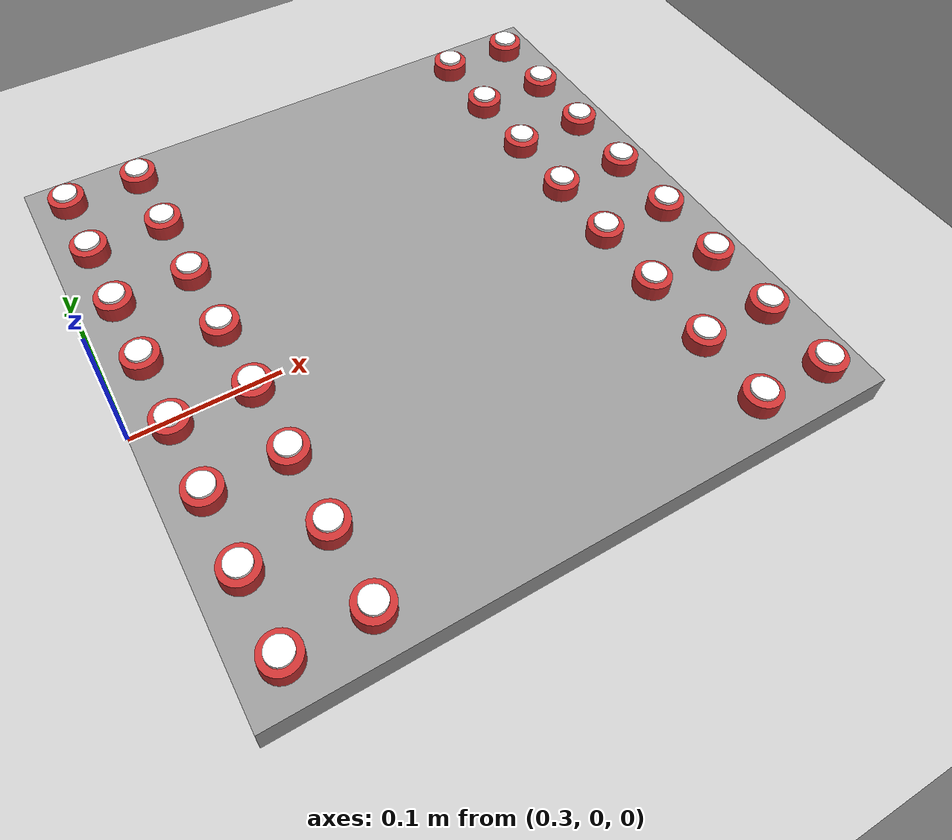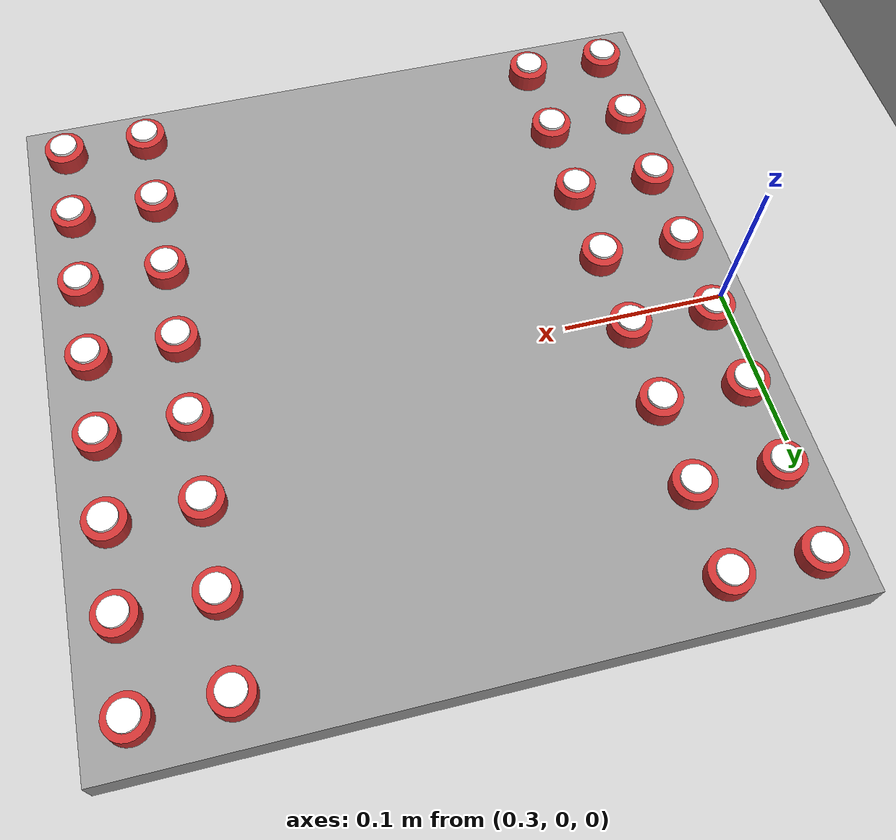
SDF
<?xml version="1.0" ?>
<sdf version="1.6">
  <world name="panda_pick_and_place">
    <!--A global light source-->
    <include>
      <uri>model://sun</uri>
    </include>
    <!--A ground plane-->
    <include>
      <uri>model://ground_plane</uri>
    </include>
    <!--A chess board-->
    <include>
      <uri>model://checkerboard_plane</uri>
      <pose>0.5 0.0 0.011 0 -0 0</pose>
    </include>
    <include>
      <uri>model://chess_box</uri>
      <pose>0.5 0.0 0.0 0 -0 0</pose>
    </include>

    <!-- Chess pieces -->
<include>
    <uri>model://chess_piece</uri>
    <name>chess_piece_0</name>
    <pose>0.325 -0.175 0.021 0 0 0</pose>
</include>

<include>
    <uri>model://chess_piece</uri>
    <name>chess_piece_1</name>
    <pose>0.325 -0.125 0.021 0 0 0</pose>
</include>

<include>
    <uri>model://chess_piece</uri>
    <name>chess_piece_2</name>
    <pose>0.325 -0.075 0.021 0 0 0</pose>
</include>

<include>
    <uri>model://chess_piece</uri>
    <name>chess_piece_3</name>
    <pose>0.325 -0.025 0.021 0 0 0</pose>
</include>

<include>
    <uri>model://chess_piece</uri>
    <name>chess_piece_4</name>
    <pose>0.325 0.025 0.021 0 0 0</pose>
</include>

<include>
    <uri>model://chess_piece</uri>
    <name>chess_piece_5</name>
    <pose>0.325 0.075 0.021 0 0 0</pose>
</include>

<include>
    <uri>model://chess_piece</uri>
    <name>chess_piece_6</name>
    <pose>0.325 0.125 0.021 0 0 0</pose>
</include>

<include>
    <uri>model://chess_piece</uri>
    <name>chess_piece_7</name>
    <pose>0.325 0.175 0.021 0 0 0</pose>
</include>

<include>
    <uri>model://chess_piece</uri>
    <name>chess_piece_8</name>
    <pose>0.375 -0.175 0.021 0 0 0</pose>
</include>

<include>
    <uri>model://chess_piece</uri>
    <name>chess_piece_9</name>
    <pose>0.375 -0.125 0.021 0 0 0</pose>
</include>

<include>
    <uri>model://chess_piece</uri>
    <name>chess_piece_10</name>
    <pose>0.375 -0.075 0.021 0 0 0</pose>
</include>

<include>
    <uri>model://chess_piece</uri>
    <name>chess_piece_11</name>
    <pose>0.375 -0.025 0.021 0 0 0</pose>
</include>

<include>
    <uri>model://chess_piece</uri>
    <name>chess_piece_12</name>
    <pose>0.375 0.025 0.021 0 0 0</pose>
</include>

<include>
    <uri>model://chess_piece</uri>
    <name>chess_piece_13</name>
    <pose>0.375 0.075 0.021 0 0 0</pose>
</include>

<include>
    <uri>model://chess_piece</uri>
    <name>chess_piece_14</name>
    <pose>0.375 0.125 0.021 0 0 0</pose>
</include>

<include>
    <uri>model://chess_piece</uri>
    <name>chess_piece_15</name>
    <pose>0.375 0.175 0.021 0 0 0</pose>
</include>

<include>
    <uri>model://chess_piece</uri>
    <name>chess_piece_48</name>
    <pose>0.625 -0.175 0.021 0 0 0</pose>
</include>

<include>
    <uri>model://chess_piece</uri>
    <name>chess_piece_49</name>
    <pose>0.625 -0.125 0.021 0 0 0</pose>
</include>

<include>
    <uri>model://chess_piece</uri>
    <name>chess_piece_50</name>
    <pose>0.625 -0.075 0.021 0 0 0</pose>
</include>

<include>
    <uri>model://chess_piece</uri>
    <name>chess_piece_51</name>
    <pose>0.625 -0.025 0.021 0 0 0</pose>
</include>

<include>
    <uri>model://chess_piece</uri>
    <name>chess_piece_52</name>
    <pose>0.625 0.025 0.021 0 0 0</pose>
</include>

<include>
    <uri>model://chess_piece</uri>
    <name>chess_piece_53</name>
    <pose>0.625 0.075 0.021 0 0 0</pose>
</include>

<include>
    <uri>model://chess_piece</uri>
    <name>chess_piece_54</name>
    <pose>0.625 0.125 0.021 0 0 0</pose>
</include>

<include>
    <uri>model://chess_piece</uri>
    <name>chess_piece_55</name>
    <pose>0.625 0.175 0.021 0 0 0</pose>
</include>

<include>
    <uri>model://chess_piece</uri>
    <name>chess_piece_56</name>
    <pose>0.675 -0.175 0.021 0 0 0</pose>
</include>

<include>
    <uri>model://chess_piece</uri>
    <name>chess_piece_57</name>
    <pose>0.675 -0.125 0.021 0 0 0</pose>
</include>

<include>
    <uri>model://chess_piece</uri>
    <name>chess_piece_58</name>
    <pose>0.675 -0.075 0.021 0 0 0</pose>
</include>

<include>
    <uri>model://chess_piece</uri>
    <name>chess_piece_59</name>
    <pose>0.675 -0.025 0.021 0 0 0</pose>
</include>

<include>
    <uri>model://chess_piece</uri>
    <name>chess_piece_60</name>
    <pose>0.675 0.025 0.021 0 0 0</pose>
</include>

<include>
    <uri>model://chess_piece</uri>
    <name>chess_piece_61</name>
    <pose>0.675 0.075 0.021 0 0 0</pose>
</include>

<include>
    <uri>model://chess_piece</uri>
    <name>chess_piece_62</name>
    <pose>0.675 0.125 0.021 0 0 0</pose>
</include>

<include>
    <uri>model://chess_piece</uri>
    <name>chess_piece_63</name>
    <pose>0.675 0.175 0.021 0 0 0</pose>
</include>

  </world>
</sdf>

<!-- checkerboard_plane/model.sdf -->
<sdf version="1.5">
  <model name="checkerboard_plane">
    <static>true</static>
    <link name="link">
      <collision name="collision">
        <geometry>
          <plane>
            <normal>0 0 1</normal>
            <size>2000 2000</size>
          </plane>
        </geometry>
        <surface>
          <friction>
            <ode>
              <mu>100</mu>
              <mu2>50</mu2>
            </ode>
          </friction>
        </surface>
      </collision>
      <visual name="visual">
        <cast_shadows>false</cast_shadows>
        <geometry>
          <plane>
            <normal>0 0 1</normal>
            <size>2000 2000</size>
          </plane>
        </geometry>
        <material>
          <script>
            <uri>model://checkerboard_plane/materials/scripts</uri>
            <uri>model://checkerboard_plane/materials/textures</uri>
            <name>Checkerboard/Checkerboard</name>
          </script>
        </material>
      </visual>
    </link>
  </model>
</sdf>

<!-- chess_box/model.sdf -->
<sdf version='1.6'>
  <model name='chess_box'>
    <link name='link'>
      <pose>0 0 0.02 0 -0 0</pose>
      <inertial>
        <pose>0 0 0 0 -0 0</pose>
        <mass>10</mass>
        <inertia>
          <ixx>0.166667</ixx>
          <ixy>0</ixy>
          <ixz>0</ixz>
          <iyy>0.166667</iyy>
          <iyz>0</iyz>
          <izz>0.166667</izz>
        </inertia>
      </inertial>
      <self_collide>0</self_collide>
      <enable_wind>0</enable_wind>
      <kinematic>0</kinematic>
      <visual name='visual'>
        <pose>0 0 0 0 -0 0</pose>
        <geometry>
          <box>
            <size>0.4 0.4 0.02</size>
          </box>
        </geometry>
        <material>
          <script>
            <name>Gazebo/Grey</name>
            <uri>file://media/materials/scripts/gazebo.material</uri>
          </script>
          <shader type='pixel'/>
        </material>
        <pose>0 0 0 0 -0 0</pose>
        <transparency>0</transparency>
        <cast_shadows>1</cast_shadows>
      </visual>
      <collision name='collision'>
        <laser_retro>0</laser_retro>
        <max_contacts>10</max_contacts>
        <pose>0 0 0 0 -0 0</pose>
        <geometry>
          <box>
            <size>0.4 0.4 0.02</size>
          </box>
        </geometry>
        <surface>
          <friction>
            <ode>
              <mu>1</mu>
              <mu2>1</mu2>
              <fdir1>0 0 0</fdir1>
              <slip1>0</slip1>
              <slip2>0</slip2>
            </ode>
            <torsional>
              <coefficient>1</coefficient>
              <patch_radius>0</patch_radius>
              <surface_radius>0</surface_radius>
              <use_patch_radius>1</use_patch_radius>
              <ode>
                <slip>0</slip>
              </ode>
            </torsional>
          </friction>
          <bounce>
            <restitution_coefficient>0</restitution_coefficient>
            <threshold>1e+06</threshold>
          </bounce>
          <contact>
            <collide_without_contact>0</collide_without_contact>
            <collide_without_contact_bitmask>1</collide_without_contact_bitmask>
            <collide_bitmask>1</collide_bitmask>
            <ode>
              <soft_cfm>0</soft_cfm>
              <soft_erp>0.2</soft_erp>
              <kp>1e+13</kp>
              <kd>1</kd>
              <max_vel>0.01</max_vel>
              <min_depth>0</min_depth>
            </ode>
            <bullet>
              <split_impulse>1</split_impulse>
              <split_impulse_penetration_threshold>-0.01</split_impulse_penetration_threshold>
              <soft_cfm>0</soft_cfm>
              <soft_erp>0.2</soft_erp>
              <kp>1e+13</kp>
              <kd>1</kd>
            </bullet>
          </contact>
        </surface>
      </collision>
    </link>
    <static>1</static>
    <allow_auto_disable>1</allow_auto_disable>
  </model>
</sdf>

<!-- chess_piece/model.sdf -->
<sdf version="1.7">
  <model name="chess_piece">
    <link name="piece">
      <pose>0 0 0.01 0 0 0</pose>

      <!-- 碰撞模型 -->
      <collision name="collision">
        <geometry>
          <cylinder>
            <radius>0.012</radius>
            <length>0.02</length>
          </cylinder>
        </geometry>
        <surface>
          <friction>
            <ode>
              <mu>0.8</mu>
              <mu2>0.8</mu2>
            </ode>
          </friction>
          <contact>
            <ode>
              <kp>1000000</kp>
              <kd>1</kd>
            </ode>
          </contact>
        </surface>
      </collision>

      <!-- 视觉模型 -->
      <visual name="visual">
        <geometry>
          <cylinder>
            <radius>0.012</radius>
            <length>0.02</length>
          </cylinder>
        </geometry>
        <material>
          <ambient>0.8 0.2 0.2 1</ambient>
          <diffuse>0.8 0.2 0.2 1</diffuse>
          <specular>0.1 0.1 0.1 1</specular>
        </material>
      </visual>

      <!-- 惯性属性 -->
      <inertial>
        <mass>0.05</mass>
        <pose>0 0 0.01 0 0 0</pose>
        <inertia>
          <ixx>0.00001</ixx>
          <iyy>0.00001</iyy>
          <izz>0.000005</izz>
          <ixy>0</ixy>
          <ixz>0</ixz>
          <iyz>0</iyz>
        </inertia>
      </inertial>
    </link>

    <!-- 顶部标记（用于识别棋子类型） -->
    <link name="piece_marker">
      <pose>0 0 0.022 0 0 0</pose>
      <visual name="marker_visual">
        <geometry>
          <cylinder>
            <radius>0.008</radius>
            <length>0.002</length>
          </cylinder>
        </geometry>
        <material>
          <ambient>1 1 1 1</ambient>
          <diffuse>1 1 1 1</diffuse>
          <specular>0.2 0.2 0.2 1</specular>
        </material>
      </visual>
    </link>

    <joint name="marker_joint" type="fixed">
      <parent>piece</parent>
      <child>piece_marker</child>
    </joint>

    <!-- 插件用于动态控制棋子 -->
    <plugin name="piece_plugin" filename="libgazebo_ros_force.so">
      <robotNamespace>/chess_piece</robotNamespace>
      <bodyName>piece</bodyName>
      <topicName>force</topicName>
    </plugin>
  </model>
</sdf>
